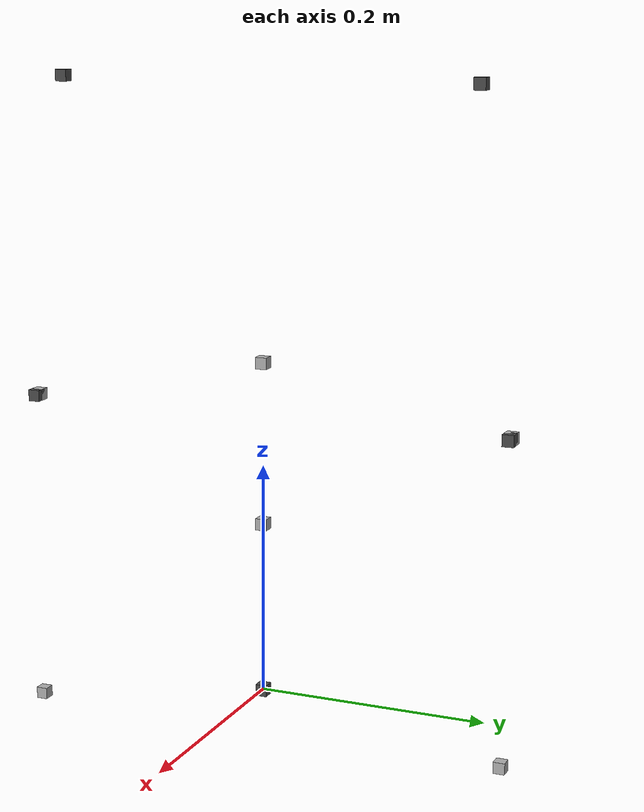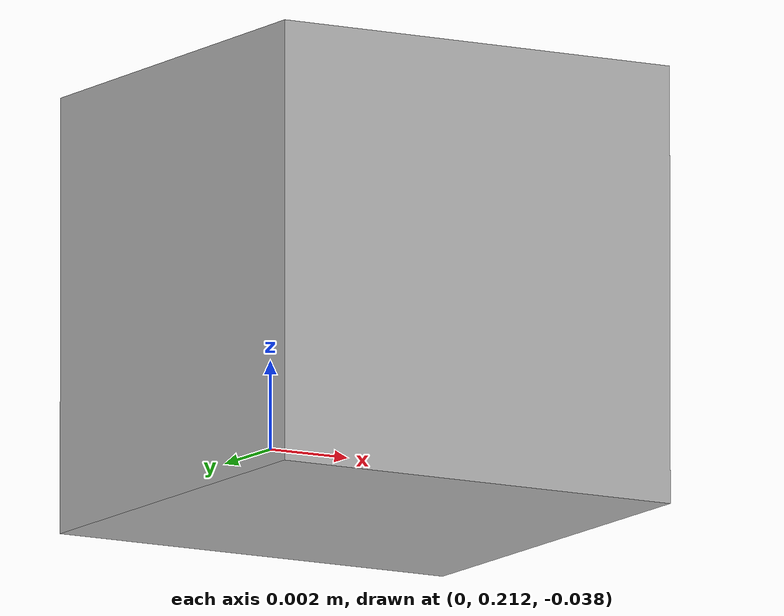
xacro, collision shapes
<?xml version="1.0"?>
<robot name="m3"
       xmlns:xi="http://www.w3.org/2001/XInclude"
       xmlns:gazebo="http://playerstage.sourceforge.net/gazebo/xmlschema/#gz"
       xmlns:model="http://playerstage.sourceforge.net/gazebo/xmlschema/#model"
       xmlns:sensor="http://playerstage.sourceforge.net/gazebo/xmlschema/#sensor"
       xmlns:body="http://playerstage.sourceforge.net/gazebo/xmlschema/#body"
       xmlns:geom="http://playerstage.sourceforge.net/gazebo/xmlschema/#geom"
       xmlns:joint="http://playerstage.sourceforge.net/gazebo/xmlschema/#joint"
       xmlns:interface="http://playerstage.sourceforge.net/gazebo/xmlschema/#interface"
       xmlns:rendering="http://playerstage.sourceforge.net/gazebo/xmlschema/#rendering"
       xmlns:renderable="http://playerstage.sourceforge.net/gazebo/xmlschema/#renderable"
       xmlns:controller="http://playerstage.sourceforge.net/gazebo/xmlschema/#controller"
       xmlns:physics="http://playerstage.sourceforge.net/gazebo/xmlschema/#physics">

	<include filename="$(find m3_defs_ros)/defs/A2R2_r_arm_defs.urdf.xacro" />
	<include filename="$(find m3_defs_ros)/defs/A2R2_l_arm_defs.urdf.xacro" />

  <property name="M_PI" value="3.1415926535897931" />

  <material name="GreyA"> <!-- darkest -->
	  <color rgba="0.3 0.3 0.3 1.0"/>
  </material>

  <material name="GreyB">
	  <color rgba="0.5 0.5 0.5 1.0"/>
  </material>

  <material name="GreyC">
	  <color rgba="0.7 0.7 0.7 1.0"/>
  </material>

 <m3_r_arm side="r" reflect="1" parent="upper">
	  <origin xyz="0.0 -0.18465 0.2337" rpy="0 0 0" />
  </m3_r_arm>

  <m3_l_arm side="l" reflect="1" parent="upper">
	  <origin xyz="0.0 0.18465 0.2337" rpy="0 0 0" />
  </m3_l_arm>

<link name="world" />

  <!-- Solid Base -->
  <joint name="base_joint" type="fixed">
    <origin xyz="0 0 0" rpy="0 0 0" />
    <parent link="world" />
    <child link="panplate" />
  </joint>
  <link name="panplate">
    <inertial>
      <mass value="1000" />
      <origin xyz="0 0 0" />
      <inertia ixx="1000"  ixy="0"  ixz="0" iyy="1000" iyz="0" izz="1000" />
    </inertial>
    <visual>
      <material name="GreyA" />
      <origin xyz="0 0 0" rpy="0 0 0 " />
      <geometry name="panplate_geom">
	      <mesh filename="package://m3_defs_ros/meshes/T2R2_panplate.mesh" />
      </geometry>
    </visual>
    <collision>
      <origin xyz="0 0 0" rpy="0.0 0.0 0.0 " />
      <geometry name="base_collision_geom">
        <box size="0.01 0.01 0.01" />
      </geometry>
    </collision>
  </link>
  <joint name="m3joint_mt4_j0" type="continuous">
    <axis xyz="0 0 1"/>
    <origin xyz="0 0 0.1493" rpy="0 0 0" />
    <parent link="panplate" />
    <child link="torso" />
  </joint>
  <link name="torso">
    <inertial>
      <mass value="1000" />
      <origin xyz="0 0 0" />
      <inertia ixx="1000"  ixy="0"  ixz="0" iyy="1000" iyz="0" izz="1000" />
    </inertial>
    <visual>
      <material name="GreyC" />
      <origin xyz="0 0 0" rpy="0 0 0 " />
      <geometry name="torso_geom">
	      <mesh filename="package://m3_defs_ros/meshes/T2R2_torso.mesh" />
      </geometry>
    </visual>
    <collision>
      <origin xyz="0 0 0" rpy="0.0 0.0 0.0 " />
      <geometry name="torso_collision_geom">
        <box size="0.01 0.01 0.01" />
      </geometry>
    </collision>
  </link>

  <joint name="m3joint_mt4_j1" type="continuous">
    <axis xyz="0 1 0"/>
    <origin xyz="0 0 0" rpy="0 0 0" />
    <parent link="torso" />
    <child link="mid" />
  </joint>
  <link name="mid">
    <inertial>
      <mass value="1000" />
      <origin xyz="0 0 0" />
      <inertia ixx="1000"  ixy="0"  ixz="0" iyy="1000" iyz="0" izz="1000" />
    </inertial>
    <visual>
      <material name="GreyB" />
      <origin xyz="0 0 0" rpy="0 0 0" />
      <geometry name="mid_geom">
	      <mesh filename="package://m3_defs_ros/meshes/T2R2_mid.mesh" />
      </geometry>
    </visual>
    <collision>
      <origin xyz="0 0 0" rpy="0.0 0.0 0.0 " />
      <geometry name="mid_collision_geom">
        <box size="0.01 0.01 0.01" />
      </geometry>
    </collision>
  </link>

  <joint name="m3joint_slave_mt4_j2" type="continuous">
    <axis xyz="0 1 0"/>
    <origin xyz="0 0 0.1397" rpy="0 0 0" />
    <parent link="mid" />
    <child link="upper" />
  </joint>
  <link name="upper">
    <inertial>
      <mass value="1000" />
      <origin xyz="0 0 0" />
      <inertia ixx="1000"  ixy="0"  ixz="0" iyy="1000" iyz="0" izz="1000" />
    </inertial>
    <visual>
      <material name="GreyC" />
      <origin xyz="0 0 0" rpy="0 0 3.14159" />
      <geometry name="upper_geom">
	      <mesh filename="package://m3_defs_ros/meshes/T2R2_upper.mesh" />
      </geometry>
    </visual>
    <collision>
      <origin xyz="0 0 0" rpy="0.0 0.0 0.0 " />
      <geometry name="upper_collision_geom">
        <box size="0.01 0.01 0.01" />
      </geometry>
    </collision>
  </link>

</robot>

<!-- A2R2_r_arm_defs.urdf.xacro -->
<robot xmlns:sensor="http://playerstage.sourceforge.net/gazebo/xmlschema/#sensor"
       xmlns:controller="http://playerstage.sourceforge.net/gazebo/xmlschema/#controller"
       xmlns:interface="http://playerstage.sourceforge.net/gazebo/xmlschema/#interface">

  <property name="M_PI" value="3.1415926535897931" />
  <property name="VELOCITY_LIMIT_SCALE" value="0.6" />

  <property name="shoulder_lift_length" value="0.10" />
  <property name="shoulder_lift_radius" value="0.12" />

  <!-- for non-symmetric upper arm -->
  <property name="uar_xyz1" value= "0.21398" />
  <property name="uar_xyz2" value="-0.01621" />
  <property name="uar_xyz3" value="-0.00020" />
  <property name="uar_ixx"  value= "0.01537748957" />
  <property name="uar_ixy"  value= "0.00375711247" />
  <property name="uar_ixz"  value="-0.00070852914" />
  <property name="uar_iyy"  value= "0.07473670440" />
  <property name="uar_iyz"  value="-0.00017936450" />
  <property name="uar_izz"  value= "0.07608763307" />

  <property name="ual_xyz1" value= "0.21405" />
  <property name="ual_xyz2" value= "0.01658" />
  <property name="ual_xyz3" value="-0.00057" />
  <property name="ual_ixx"  value= "0.01530603856" />
  <property name="ual_ixy"  value="-0.00339324862" />
  <property name="ual_ixz"  value= "0.00060765455" />
  <property name="ual_iyy"  value= "0.07473694455" />
  <property name="ual_iyz"  value="-0.00019953729" />
  <property name="ual_izz"  value= "0.07601594191" />

  <macro name="m3_r_shoulder" params="side parent reflect *origin">

    <!-- Shoulder pan -->
    <joint name="m3joint_ma12_j0" type="revolute">
      <axis xyz="0 -1 0" />
      <insert_block name="origin" /> <!-- transform from parent link to this joint frame -->
      <parent link="${parent}"/>
      <child link="shoulderupper_RIGHT"/>
      <limit lower="${reflect*M_PI/4-1.5}"  upper="${reflect*M_PI/4+1.5}"
             effort="30" velocity="${VELOCITY_LIMIT_SCALE*3.48}" />

      <dynamics damping="10.0" />

      <safety_controller k_position="100" k_velocity="10"
                         soft_lower_limit="${reflect*M_PI/4-1.5+0.15}"
                         soft_upper_limit="${reflect*M_PI/4+1.5-0.15}" />

      <!-- joint angle when the rising or the falling flag is activated on PR2 -->

    </joint>
    <link name="shoulderupper_RIGHT">

      <inertial>
        <mass value="25.799322" />
        <origin xyz="-0.001201 0.024513 -0.098231" rpy="0 0 0"/>
        <inertia ixx="0.866179142480"  ixy="-0.06086507933"  ixz="-0.12118061183"
                 iyy="0.87421714893"  iyz="-0.05886609911"
                 izz="0.27353821674" />
      </inertial>

      <visual>
	      <material name="GreyA" />
	      <origin xyz="0 0 0" rpy="0 0 0 " />
	      <geometry name="r_shoulder_geom">
		      <mesh filename="package://m3_defs_ros/meshes/A2R2_shoulderupper_RIGHT.mesh" />
	      </geometry>
      </visual>

      <collision>
	      <origin xyz="0 0 0" rpy="0.0 0.0 0.0 " />
	      <geometry name="r_shoulder_collision_geom">
		      <box size="0.01 0.01 0.01" />
	      </geometry>
      </collision>
    </link>

    <!-- Shoulder lift -->
    <joint name="m3joint_ma12_j1" type="revolute">
      <axis xyz="-1 0 0"/>

      <!-- Limits updated from Function's CAD values as of 2009_02_24 (link_data.xls) -->
      <limit lower="-0.5236" upper="1.3963"
             effort="30" velocity="${VELOCITY_LIMIT_SCALE*3.47}" />

      <safety_controller k_position="100" k_velocity="10"
                         soft_lower_limit="${-0.5236+0.17}" soft_upper_limit="${1.3963-0.05}" />
      <dynamics damping="10.0" />
      <origin xyz="0 0 0" rpy="0 0 0" />
      <parent link="shoulderupper_RIGHT"/>
      <child link="shoulderpitch_RIGHT"/>
    </joint>
    <link name="shoulderpitch_RIGHT">

      <inertial>
        <mass value="2.74988" />
        <origin xyz="0.02195 -0.02664 -0.03127" rpy="0 0 0"/>
        <inertia ixx="0.02105584615" ixy="0.00496704022"  ixz="-0.00194808955"
                 iyy="0.02127223737" iyz="0.00110425490"
                 izz="0.01975753814" />
      </inertial>

      <visual>
	      <material name="GreyB" />
	      <origin xyz="0 0 0" rpy="0 0 0 " />
	      <geometry name="shoulderpitch_RIGHT">
		      <mesh filename="package://m3_defs_ros/meshes/A2R2_shoulderpitch_RIGHT.mesh" />
	      </geometry>
      </visual>

      <collision>
	      <origin xyz="0 0 0" rpy="0.0 0.0 0.0 " />
	      <geometry name="shoulderpitch_RIGHT_collision">
		      <box size="0.01 0.01 0.01" />
	      </geometry>
      </collision>
    </link>

    <!-- Upperarm roll: internal fixed attchment point for upper arm -->

    <joint name="m3joint_ma12_j2" type="revolute">
      <axis xyz="0 0 -1" />
      <origin xyz="0 -0.03175 -0.27857" rpy="0 0 0" />
      <parent link="shoulderpitch_RIGHT" />
      <child link="bicep_RIGHT"/>
      <limit lower="${reflect*1.55-2.35}" upper="${reflect*1.55+2.35}" effort="30" velocity="${VELOCITY_LIMIT_SCALE*5.45}" />
      <safety_controller k_position="100" k_velocity="2" soft_lower_limit="${reflect*1.55-2.35+0.15}" soft_upper_limit="${reflect*1.55+2.35-0.15}" />
      <dynamics damping="0.1" />
    </joint>
    <link name="bicep_RIGHT">

      <inertial>
        <!-- dummy mass, to be removed -->
        <mass value="0.1" />
        <origin xyz="0.0 0 0" rpy="0 0 0" />
        <inertia  ixx="0.01" ixy="0.00"  ixz="0.00"
                  iyy="0.01" iyz="0.00"
                  izz="0.01" />
      </inertial>
      <visual>
	      <material name="GreyC" />
	      <origin xyz="0 0 0" rpy="0 0 0 " />
	      <geometry name="bicep_RIGHT_geom">
		      <mesh filename="package://m3_defs_ros/meshes/A2R2_bicep_RIGHT.mesh" />
	      </geometry>
      </visual>

      <collision>
	      <origin xyz="0 0 0" rpy="0.0 0.0 0.0 " />
	      <geometry name="bicep_RIGHT_geom_collision">
		      <box size="0.01 0.01 0.01" />
	      </geometry>
      </collision>
    </link>

  </macro>

  <!-- ============================   Upper Arm   ============================ -->

  <macro name="m3_r_upper_arm" params="side parent reflect">

	  <joint name="m3joint_ma12_j3" type="revolute">
		  <axis xyz="0 -1 0" />
		  <origin xyz="0.00502 0  0" rpy="0 0 0" />
      <parent link="${parent}"/>
      <child link="elbowclevis_RIGHT"/>
	<limit lower="${reflect*M_PI/4-1.5}"  upper="${reflect*M_PI/4+1.5}"
             effort="30" velocity="${VELOCITY_LIMIT_SCALE*3.48}" />
    </joint>
    <link name="elbowclevis_RIGHT">

      <inertial>
        <!-- NOTE:reflect==-1 for right side, reflect==1 for the left side -->
        <mass value="6.01769" />
        <origin xyz="${0.5*((reflect+1)*ual_xyz1+(1-reflect)*uar_xyz1)} ${0.5*((reflect+1)*ual_xyz2+(1-reflect)*uar_xyz2)} ${0.5*((reflect+1)*ual_xyz3+(1-reflect)*uar_xyz3)}" />
        <inertia  ixx="${0.5*((reflect+1)*ual_ixx+(1-reflect)*uar_ixx)}"
                  ixy="${0.5*((reflect+1)*ual_ixy+(1-reflect)*uar_ixy)}"
                  ixz="${0.5*((reflect+1)*ual_ixz+(1-reflect)*uar_ixz)}"
                  iyy="${0.5*((reflect+1)*ual_iyy+(1-reflect)*uar_iyy)}"
                  iyz="${0.5*((reflect+1)*ual_iyz+(1-reflect)*uar_iyz)}"
                  izz="${0.5*((reflect+1)*ual_izz+(1-reflect)*uar_izz)}" />
      </inertial>

      <visual>
	      <material name="GreyA" />
	      <origin xyz="0 0 0" rpy="0 0 0 " />
	      <geometry name="elbowclevis_RIGHT_geom">
		      <mesh filename="package://m3_defs_ros/meshes/A2R2_elbowclevis_RIGHT.mesh" />
	      </geometry>
      </visual>

      <collision>
	      <origin xyz="0 0 0" rpy="0.0 0.0 0.0 " />
	      <geometry name="elbowclevis_RIGHT_collision">
		      <box size="0.01 0.01 0.01" />
	      </geometry>
      </collision>

    </link>

    <!-- Elbow flex -->

    <joint name="m3joint_ma12_j4" type="revolute">
	    <axis xyz="0 0 -1" />
      <limit lower="-2.3" upper="0.1" effort="30" velocity="${VELOCITY_LIMIT_SCALE*5.5}" />
      <safety_controller k_position="100" k_velocity="3" soft_lower_limit="${-2.3+0.25}" soft_upper_limit="${0.1-0.1}" />

      <dynamics damping="1.0" />
      <origin xyz="0 0 -0.27747" rpy="0 0 0" />
      <parent link="elbowclevis_RIGHT"/>
      <child link="wrist_RIGHT"/>
    </joint>
    <link name="wrist_RIGHT">

      <inertial>
        <mass value="1.90327" />
        <origin xyz="0.01014 0.00032 -0.01211" />
        <inertia  ixx="0.00346541989" ixy="0.00004066825"  ixz="0.00043171614"
                  iyy="0.00441606455"  iyz="-0.00003968914"
                  izz="0.00359156824" />
      </inertial>

      <visual>
	      <material name="GreyC" />
	      <origin xyz="0 0 0" rpy="0 0 0 " />
	      <geometry name="wrist_RIGHT_geom">
		      <mesh filename="package://m3_defs_ros/meshes/A2R2_wrist.mesh" />
	      </geometry>
      </visual>

      <collision>
	      <origin xyz="0 0 0" rpy="0.0 0.0 0.0 " />
	      <geometry name="wrist_RIGHT_collision">
		      <box size="0.01 0.01 0.01" />
	      </geometry>
      </collision>
    </link>

  </macro>

  <!-- ============================   Forearm   ============================ -->

  <macro name="m3_r_forearm" params="side parent reflect">

	  <joint name="m3joint_ma12_j5" type="revolute">
		  <axis xyz="0 -1 0" />
      <origin xyz="0 0 0" rpy="0 0 0" />
      <parent link="${parent}"/>
      <child link="w_differential_RIGHT"/>
	<limit lower="${reflect*M_PI/4-1.5}"  upper="${reflect*M_PI/4+1.5}"
             effort="30" velocity="${VELOCITY_LIMIT_SCALE*3.48}" />
    </joint>
    <link name="w_differential_RIGHT">

      <inertial>
        <mass value="2.57968" />
        <origin xyz="0.18791 -0.00017 -0.00912" />
        <inertia ixx="0.00364857222" ixy="0.00005215877" ixz="0.00071534842"
                 iyy="0.01507736897" iyz="-0.00001310770"
                 izz="0.01659310749" />
      </inertial>

      <visual>
	      <material name="GreyB" />
	      <origin xyz="0 0 0" rpy="0 0 0 " />
	      <geometry name="w_differential_RIGHT_geom">
		      <mesh filename="package://m3_defs_ros/meshes/A2R2_w_differential.mesh" />
	      </geometry>
      </visual>

      <collision>
	      <origin xyz="0 0 0" rpy="0.0 0.0 0.0 " />
	      <geometry name="w_differential_RIGHT_collision">
		      <box size="0.01 0.01 0.01" />
	      </geometry>
      </collision>
    </link>

    <!-- Wrist flex -->

    <joint name="m3joint_ma12_j6" type="revolute">
	    <axis xyz="-1 0 0" />
      <limit lower="-0.1" upper="2.2" effort="200" velocity="${VELOCITY_LIMIT_SCALE*5.13}" />
      <safety_controller k_position="20" k_velocity="4" soft_lower_limit="${-0.1+0.2}" soft_upper_limit="${2.2-0.2}" />
      <dynamics damping="0.1" />
      <origin xyz="0 0 0" rpy="0 0 0" />
      <parent link="w_differential_RIGHT"/>
      <child link="handmount_RIGHT"/>
    </joint>
    <link name="handmount_RIGHT">

      <inertial>
        <mass value="0.61402" />
        <origin xyz="-0.00157 0.0 -0.00075" />
        <inertia ixx="0.00065165722" ixy="0.00000028864" ixz="0.00000303477"
                 iyy="0.00019824443" iyz="-0.00000022645"
                 izz="0.00064450498" />
      </inertial>

      <visual>
	      <material name="GreyA" />
	      <origin xyz="0 0 0" rpy="0 0 0 " />
	      <geometry name="handmount_RIGHT_geom">
		      <mesh filename="package://m3_defs_ros/meshes/A2R2_handmount.mesh" />
	      </geometry>
      </visual>

      <collision>
	      <origin xyz="0 0 0" rpy="0.0 0.0 0.0 " />
	      <geometry name="handmount_RIGHT_collision">
		      <box size="0.01 0.01 0.01" />
	      </geometry>
      </collision>
    </link>

  </macro>

  <macro name="m3_r_arm" params="side parent reflect *origin">
    <m3_r_shoulder side="${side}" reflect="${reflect}" parent="${parent}">
      <insert_block name="origin" />
    </m3_r_shoulder>
    <m3_r_upper_arm side="${side}" reflect="${reflect}" parent="bicep_RIGHT" />
    <m3_r_forearm side="${side}" reflect="${reflect}" parent="wrist_RIGHT" />

  </macro>

</robot>

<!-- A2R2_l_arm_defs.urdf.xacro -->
<robot xmlns:sensor="http://playerstage.sourceforge.net/gazebo/xmlschema/#sensor"
       xmlns:controller="http://playerstage.sourceforge.net/gazebo/xmlschema/#controller"
       xmlns:interface="http://playerstage.sourceforge.net/gazebo/xmlschema/#interface">

  <property name="M_PI" value="3.1415926535897931" />
  <property name="VELOCITY_LIMIT_SCALE" value="0.6" />

  <property name="shoulder_lift_length" value="0.10" />
  <property name="shoulder_lift_radius" value="0.12" />

  <!-- for non-symmetric upper arm -->
  <property name="uar_xyz1" value= "0.21398" />
  <property name="uar_xyz2" value="-0.01621" />
  <property name="uar_xyz3" value="-0.00020" />
  <property name="uar_ixx"  value= "0.01537748957" />
  <property name="uar_ixy"  value= "0.00375711247" />
  <property name="uar_ixz"  value="-0.00070852914" />
  <property name="uar_iyy"  value= "0.07473670440" />
  <property name="uar_iyz"  value="-0.00017936450" />
  <property name="uar_izz"  value= "0.07608763307" />

  <property name="ual_xyz1" value= "0.21405" />
  <property name="ual_xyz2" value= "0.01658" />
  <property name="ual_xyz3" value="-0.00057" />
  <property name="ual_ixx"  value= "0.01530603856" />
  <property name="ual_ixy"  value="-0.00339324862" />
  <property name="ual_ixz"  value= "0.00060765455" />
  <property name="ual_iyy"  value= "0.07473694455" />
  <property name="ual_iyz"  value="-0.00019953729" />
  <property name="ual_izz"  value= "0.07601594191" />

  <macro name="m3_l_shoulder" params="side parent reflect *origin">

    <!-- Shoulder pan -->
    <joint name="m3joint_ma14_j0" type="revolute">
      <axis xyz="0 -1 0" />
      <insert_block name="origin" /> <!-- transform from parent link to this joint frame -->
      <parent link="${parent}"/>
      <child link="shoulderupper_LEFT"/>
      <limit lower="${reflect*M_PI/4-1.5}"  upper="${reflect*M_PI/4+1.5}"
             effort="30" velocity="${VELOCITY_LIMIT_SCALE*3.48}" />

      <dynamics damping="10.0" />

      <safety_controller k_position="100" k_velocity="10"
                         soft_lower_limit="${reflect*M_PI/4-1.5+0.15}"
                         soft_upper_limit="${reflect*M_PI/4+1.5-0.15}" />

      <!-- joint angle when the rising or the falling flag is activated on PR2 -->

    </joint>
    <link name="shoulderupper_LEFT">

      <inertial>
        <mass value="25.799322" />
        <origin xyz="-0.001201 0.024513 -0.098231" rpy="0 0 0"/>
        <inertia ixx="0.866179142480"  ixy="-0.06086507933"  ixz="-0.12118061183"
                 iyy="0.87421714893"  iyz="-0.05886609911"
                 izz="0.27353821674" />
      </inertial>

      <visual>
	      <material name="GreyA" />
	      <origin xyz="0 0 0" rpy="0 0 0 " />
	      <geometry name="l_shoulder_geom">
		      <mesh filename="package://m3_defs_ros/meshes/A2R2_shoulderupper_LEFT.mesh" />
	      </geometry>
      </visual>

      <collision>
	      <origin xyz="0 0 0" rpy="0.0 0.0 0.0 " />
	      <geometry name="l_shoulder_collision_geom">
		      <box size="0.01 0.01 0.01" />
	      </geometry>
      </collision>
    </link>

    <!-- Shoulder lift -->
    <joint name="m3joint_ma14_j1" type="revolute">
      <axis xyz="-1 0 0"/>

      <!-- Limits updated from Function's CAD values as of 2009_02_24 (link_data.xls) -->
      <limit lower="-0.5236" upper="1.3963"
             effort="30" velocity="${VELOCITY_LIMIT_SCALE*3.47}" />

      <safety_controller k_position="100" k_velocity="10"
                         soft_lower_limit="${-0.5236+0.17}" soft_upper_limit="${1.3963-0.05}" />
      <dynamics damping="10.0" />
      <origin xyz="0 0 0" rpy="0 0 0" />
      <parent link="shoulderupper_LEFT"/>
      <child link="shoulderpitch_LEFT"/>
    </joint>
    <link name="shoulderpitch_LEFT">

      <inertial>
        <mass value="2.74988" />
        <origin xyz="0.02195 -0.02664 -0.03127" rpy="0 0 0"/>
        <inertia ixx="0.02105584615" ixy="0.00496704022"  ixz="-0.00194808955"
                 iyy="0.02127223737" iyz="0.00110425490"
                 izz="0.01975753814" />
      </inertial>

      <visual>
	      <material name="GreyB" />
	      <origin xyz="0 0 0" rpy="0 0 0 " />
	      <geometry name="shoulderpitch_LEFT">
		      <mesh filename="package://m3_defs_ros/meshes/A2R2_shoulderpitch_LEFT.mesh" />
	      </geometry>
      </visual>

      <collision>
	      <origin xyz="0 0 0" rpy="0.0 0.0 0.0 " />
	      <geometry name="shoulderpitch_LEFT_collision">
		      <box size="0.01 0.01 0.01" />
	      </geometry>
      </collision>
    </link>

    <!-- Upperarm roll: internal fixed attchment point for upper arm -->

    <joint name="m3joint_ma14_j2" type="revolute">
      <axis xyz="0 0 -1" />
      <origin xyz="0 0.03175 -0.27857" rpy="0 0 0" />
      <parent link="shoulderpitch_LEFT" />
      <child link="bicep_LEFT"/>
      <limit lower="${reflect*1.55-2.35}" upper="${reflect*1.55+2.35}" effort="30" velocity="${VELOCITY_LIMIT_SCALE*5.45}" />
      <safety_controller k_position="100" k_velocity="2" soft_lower_limit="${reflect*1.55-2.35+0.15}" soft_upper_limit="${reflect*1.55+2.35-0.15}" />
      <dynamics damping="0.1" />
    </joint>
    <link name="bicep_LEFT">

      <inertial>
        <!-- dummy mass, to be removed -->
        <mass value="0.1" />
        <origin xyz="0.0 0 0" rpy="0 0 0" />
        <inertia  ixx="0.01" ixy="0.00"  ixz="0.00"
                  iyy="0.01" iyz="0.00"
                  izz="0.01" />
      </inertial>
      <visual>
	      <material name="GreyC" />
	      <origin xyz="0 0 0" rpy="0 0 0 " />
	      <geometry name="bicep_l_geom">
		      <mesh filename="package://m3_defs_ros/meshes/A2R2_bicep_LEFT.mesh" />
	      </geometry>
      </visual>

      <collision>
	      <origin xyz="0 0 0" rpy="0.0 0.0 0.0 " />
	      <geometry name="bicep_l_geom_collision">
		      <box size="0.01 0.01 0.01" />
	      </geometry>
      </collision>
    </link>

  </macro>

  <!-- ============================   Upper Arm   ============================ -->

  <macro name="m3_l_upper_arm" params="side parent reflect">

	  <joint name="m3joint_ma14_j3" type="revolute">
		  <axis xyz="0 -1 0" />
		  <origin xyz="0.00502 0  0" rpy="0 0 0" />
      <parent link="${parent}"/>
      <child link="elbowclevis_LEFT"/>
	<limit lower="${reflect*M_PI/4-1.5}"  upper="${reflect*M_PI/4+1.5}"
             effort="30" velocity="${VELOCITY_LIMIT_SCALE*3.48}" />
    </joint>
    <link name="elbowclevis_LEFT">

      <inertial>
        <!-- NOTE:reflect==-1 for right side, reflect==1 for the left side -->
        <mass value="6.01769" />
        <origin xyz="${0.5*((reflect+1)*ual_xyz1+(1-reflect)*uar_xyz1)} ${0.5*((reflect+1)*ual_xyz2+(1-reflect)*uar_xyz2)} ${0.5*((reflect+1)*ual_xyz3+(1-reflect)*uar_xyz3)}" />
        <inertia  ixx="${0.5*((reflect+1)*ual_ixx+(1-reflect)*uar_ixx)}"
                  ixy="${0.5*((reflect+1)*ual_ixy+(1-reflect)*uar_ixy)}"
                  ixz="${0.5*((reflect+1)*ual_ixz+(1-reflect)*uar_ixz)}"
                  iyy="${0.5*((reflect+1)*ual_iyy+(1-reflect)*uar_iyy)}"
                  iyz="${0.5*((reflect+1)*ual_iyz+(1-reflect)*uar_iyz)}"
                  izz="${0.5*((reflect+1)*ual_izz+(1-reflect)*uar_izz)}" />
      </inertial>

      <visual>
	      <material name="GreyA" />
	      <origin xyz="0 0 0" rpy="0 0 0 " />
	      <geometry name="elbowclevis_l_geom">
		      <mesh filename="package://m3_defs_ros/meshes/A2R2_elbowclevis_LEFT.mesh" />
	      </geometry>
      </visual>

      <collision>
	      <origin xyz="0 0 0" rpy="0.0 0.0 0.0 " />
	      <geometry name="elbowclevis_l_collision">
		      <box size="0.01 0.01 0.01" />
	      </geometry>
      </collision>

    </link>

    <!-- Elbow flex -->

    <joint name="m3joint_ma14_j4" type="revolute">
	    <axis xyz="0 0 -1" />
      <limit lower="-2.3" upper="0.1" effort="30" velocity="${VELOCITY_LIMIT_SCALE*5.5}" />
      <safety_controller k_position="100" k_velocity="3" soft_lower_limit="${-2.3+0.25}" soft_upper_limit="${0.1-0.1}" />
      <dynamics damping="1.0" />
      <origin xyz="0 0 -0.27747" rpy="0 0 0" />
      <parent link="elbowclevis_LEFT"/>
      <child link="wrist_LEFT"/>
    </joint>
    <link name="wrist_LEFT">

      <inertial>
        <mass value="1.90327" />
        <origin xyz="0.01014 0.00032 -0.01211" />
        <inertia  ixx="0.00346541989" ixy="0.00004066825"  ixz="0.00043171614"
                  iyy="0.00441606455"  iyz="-0.00003968914"
                  izz="0.00359156824" />
      </inertial>

      <visual>
	      <material name="GreyC" />
	      <origin xyz="0 0 0" rpy="0 0 0 " />
	      <geometry name="wrist_l_geom">
		      <mesh filename="package://m3_defs_ros/meshes/A2R2_wrist.mesh" />
	      </geometry>
      </visual>

      <collision>
	      <origin xyz="0 0 0" rpy="0.0 0.0 0.0 " />
	      <geometry name="wrist_l_collision">
		      <box size="0.01 0.01 0.01" />
	      </geometry>
      </collision>
    </link>

  </macro>

  <!-- ============================   Forearm   ============================ -->

  <macro name="m3_l_forearm" params="side parent reflect">

	  <joint name="m3joint_ma14_j5" type="revolute">
		  <axis xyz="0 -1 0" />
      <origin xyz="0 0 0" rpy="0 0 0" />
      <parent link="${parent}"/>
      <child link="w_differential_LEFT"/>
	<limit lower="${reflect*M_PI/4-1.5}"  upper="${reflect*M_PI/4+1.5}"
             effort="30" velocity="${VELOCITY_LIMIT_SCALE*3.48}" />
    </joint>
    <link name="w_differential_LEFT">

      <inertial>
        <mass value="2.57968" />
        <origin xyz="0.18791 -0.00017 -0.00912" />
        <inertia ixx="0.00364857222" ixy="0.00005215877" ixz="0.00071534842"
                 iyy="0.01507736897" iyz="-0.00001310770"
                 izz="0.01659310749" />
      </inertial>

      <visual>
	      <material name="GreyB" />
	      <origin xyz="0 0 0" rpy="0 0 0 " />
	      <geometry name="w_differential_l_geom">
		      <mesh filename="package://m3_defs_ros/meshes/A2R2_w_differential.mesh" />
	      </geometry>
      </visual>

      <collision>
	      <origin xyz="0 0 0" rpy="0.0 0.0 0.0 " />
	      <geometry name="w_differential_l_collision">
		      <box size="0.01 0.01 0.01" />
	      </geometry>
      </collision>
    </link>

    <!-- Wrist flex -->

    <joint name="m3joint_ma14_j6" type="revolute">
	    <axis xyz="-1 0 0" />
      <limit lower="-0.1" upper="2.2" effort="200" velocity="${VELOCITY_LIMIT_SCALE*5.13}" />
      <safety_controller k_position="20" k_velocity="4" soft_lower_limit="${-0.1+0.2}" soft_upper_limit="${2.2-0.2}" />
      <dynamics damping="0.1" />
      <origin xyz="0 0 0" rpy="0 0 0" />
      <parent link="w_differential_LEFT"/>
      <child link="handmount_LEFT"/>
    </joint>
    <link name="handmount_LEFT">

      <inertial>
        <mass value="0.61402" />
        <origin xyz="-0.00157 0.0 -0.00075" />
        <inertia ixx="0.00065165722" ixy="0.00000028864" ixz="0.00000303477"
                 iyy="0.00019824443" iyz="-0.00000022645"
                 izz="0.00064450498" />
      </inertial>

      <visual>
	      <material name="GreyA" />
	      <origin xyz="0 0 0" rpy="0 0 0 " />
	      <geometry name="handmount_l_geom">
		      <mesh filename="package://m3_defs_ros/meshes/A2R2_handmount.mesh" />
	      </geometry>
      </visual>

      <collision>
	      <origin xyz="0 0 0" rpy="0.0 0.0 0.0 " />
	      <geometry name="handmount_l_collision">
		      <box size="0.01 0.01 0.01" />
	      </geometry>
      </collision>
    </link>

  </macro>

  <macro name="m3_l_arm" params="side parent reflect *origin">
    <m3_l_shoulder side="${side}" reflect="${reflect}" parent="${parent}">
      <insert_block name="origin" />
    </m3_l_shoulder>
    <m3_l_upper_arm side="${side}" reflect="${reflect}" parent="bicep_LEFT" />
    <m3_l_forearm side="${side}" reflect="${reflect}" parent="wrist_LEFT" />

  </macro>

</robot>
